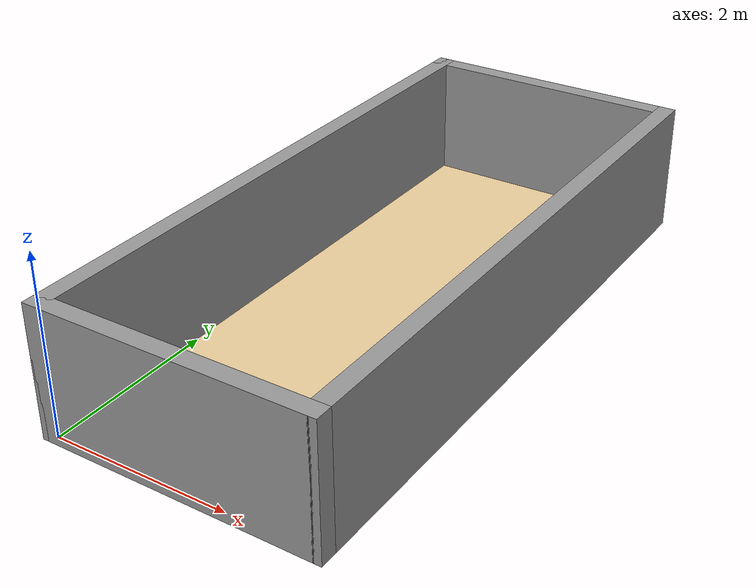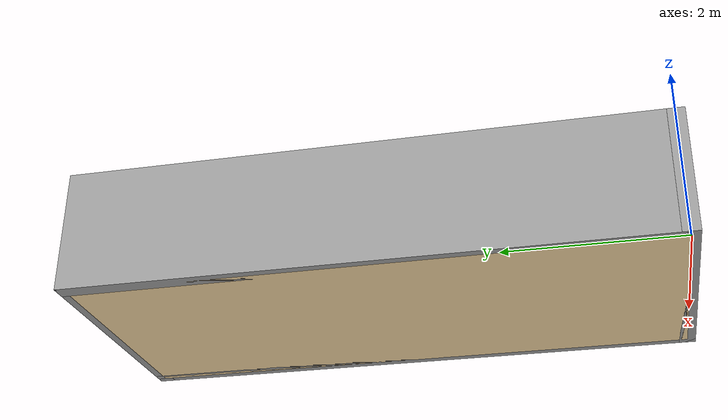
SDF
<?xml version='1.0'?>
<sdf version='1.7'>
  <model name='SupermarketWalls'>
    <pose>1.5 3.5 0 0 -0 0</pose>
     <link name='Floor_0'>
      <collision name='Floor_0_Collision'>
        <geometry>
          <box>
            <size>3 7 0.1</size>
          </box>
        </geometry>
        <pose>0 0 0.05 0 -0 0</pose>
      </collision>
      <visual name='Floor_0_Visual'>
        <pose>0 0 0.05 0 -0 0</pose>
        <geometry>
          <box>
            <size>3 7 0.1</size>
          </box>
        </geometry>
        <material>
          <script>
            <uri>file://media/materials/scripts/gazebo.material</uri>
            <name>Gazebo/Grey</name>
          </script>
          <ambient>0.921569 0.807843 0.615686 1</ambient>
        </material>
        <meta>
          <layer>0</layer>
        </meta>
      </visual>
      <pose>0 0 0 0 -0 0</pose>
    </link>
    <link name='Wall_14'>
      <collision name='Wall_14_Collision'>
        <geometry>
          <box>
            <size>3.2 0.2 1.5</size>
          </box>
        </geometry>
        <pose>0 0 0.75 0 -0 0</pose>
      </collision>
      <visual name='Wall_14_Visual'>
        <pose>0 0 0.75 0 -0 0</pose>
        <geometry>
          <box>
            <size>3.2 0.2 1.5</size>
          </box>
        </geometry>
        <material>
          <script>
            <uri>file://media/materials/scripts/gazebo.material</uri>
            <name>Gazebo/Grey</name>
          </script>
          <ambient>1 1 1 1</ambient>
        </material>
        <meta>
          <layer>0</layer>
        </meta>
      </visual>
      <pose>0 3.5 0 0 -0 0</pose>
    </link>
    <link name='Wall_17'>
      <collision name='Wall_17_Collision'>
        <geometry>
          <box>
            <size>7.2 0.2 1.5</size>
          </box>
        </geometry>
        <pose>0 0 0.75 0 -0 0</pose>
      </collision>
      <visual name='Wall_17_Visual'>
        <pose>0 0 0.75 0 -0 0</pose>
        <geometry>
          <box>
            <size>7.2 0.2 1.5</size>
          </box>
        </geometry>
        <material>
          <script>
            <uri>file://media/materials/scripts/gazebo.material</uri>
            <name>Gazebo/Grey</name>
          </script>
          <ambient>1 1 1 1</ambient>
        </material>
        <meta>
          <layer>0</layer>
        </meta>
      </visual>
      <pose>1.5 0 0 0 -0 -1.5708</pose>
    </link>
    <link name='Wall_19'>
      <collision name='Wall_19_Collision'>
        <geometry>
          <box>
            <size>3.2 0.2 1.5</size>
          </box>
        </geometry>
        <pose>0 0 0.75 0 -0 0</pose>
      </collision>
      <visual name='Wall_19_Visual'>
        <pose>0 0 0.75 0 -0 0</pose>
        <geometry>
          <box>
            <size>3.2 0.2 1.5</size>
          </box>
        </geometry>
        <material>
          <script>
            <uri>file://media/materials/scripts/gazebo.material</uri>
            <name>Gazebo/Grey</name>
          </script>
          <ambient>1 1 1 1</ambient>
        </material>
        <meta>
          <layer>0</layer>
        </meta>
      </visual>
      <pose>0 -3.5 0 0 -0 0</pose>
    </link>
    <link name='Wall_9'>
      <collision name='Wall_9_Collision'>
        <geometry>
          <box>
            <size>7.2 0.2 1.5</size>
          </box>
        </geometry>
        <pose>0 0 0.75 0 -0 0</pose>
      </collision>
      <visual name='Wall_9_Visual'>
        <pose>0 0 0.75 0 -0 0</pose>
        <geometry>
          <box>
            <size>7.2 0.2 1.5</size>
          </box>
        </geometry>
        <material>
          <script>
            <uri>file://media/materials/scripts/gazebo.material</uri>
            <name>Gazebo/Grey</name>
          </script>
          <ambient>1 1 1 1</ambient>
        </material>
        <meta>
          <layer>0</layer>
        </meta>
      </visual>
      <pose>-1.5 0 0 0 -0 1.5708</pose>
    </link>
    <static>1</static>
  </model>
</sdf>
